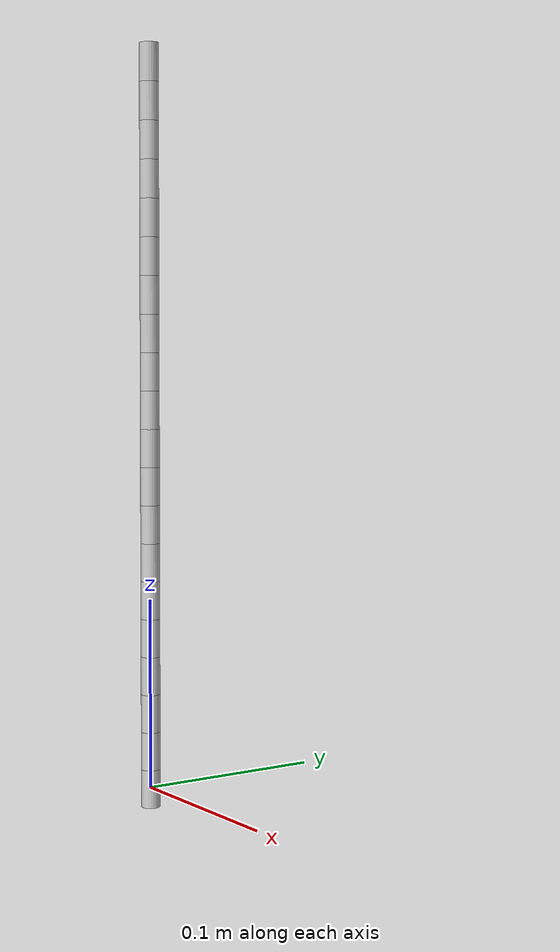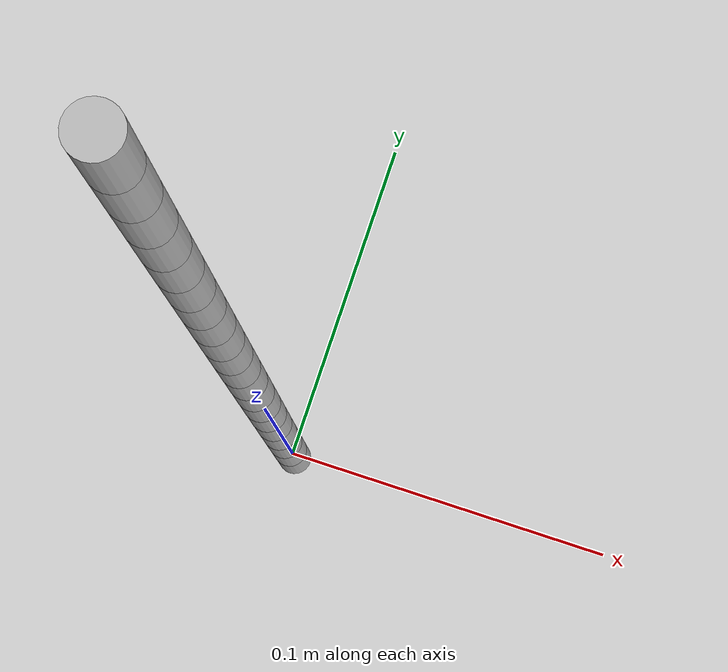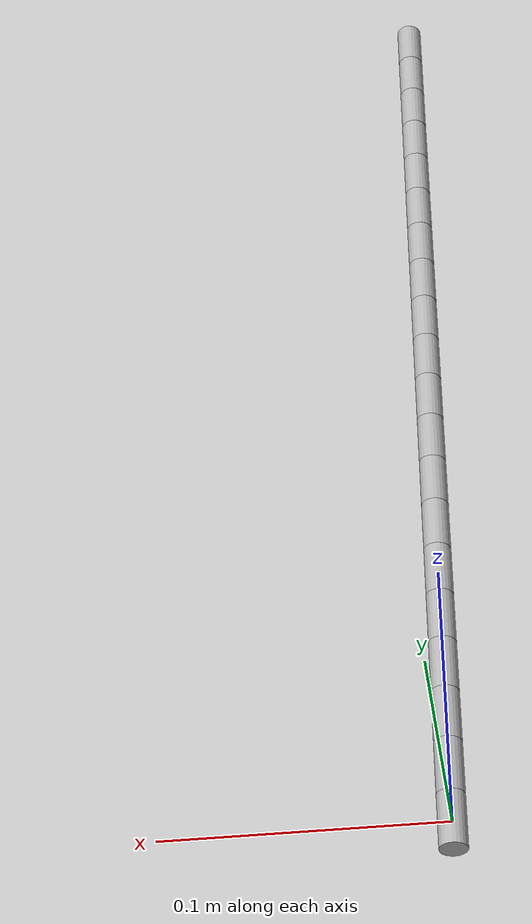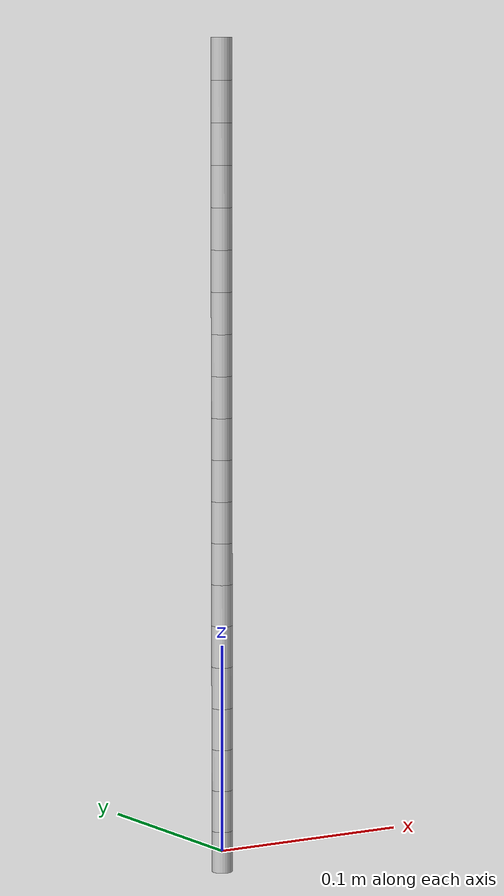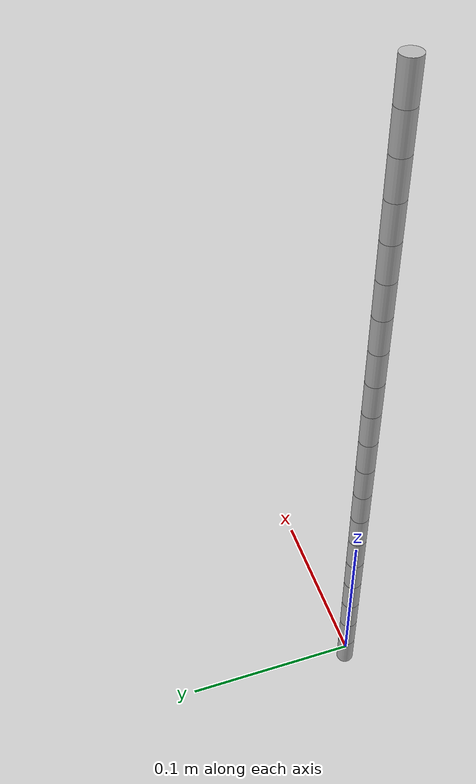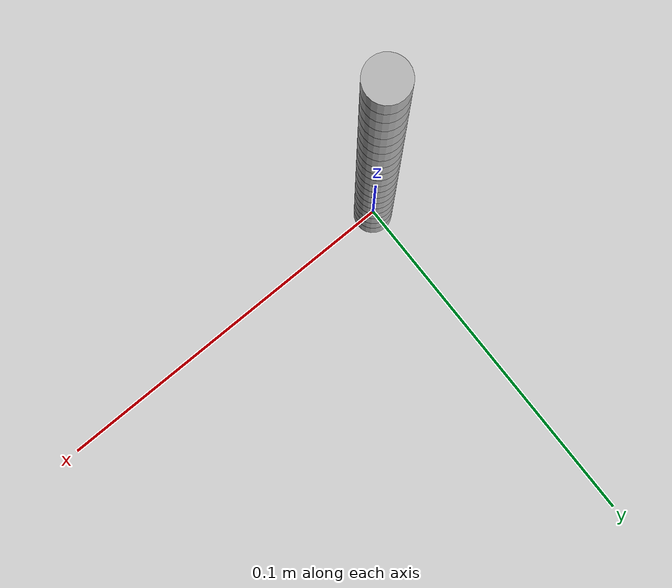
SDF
<?xml version="1.0" ?>
<sdf version='1.7'>
  <model name='tether'>
    <static>false</static>
    <link name='linking_1'>
      <inertial>
        <pose>0 0 0 0 -0 0</pose>
        <mass>0.001</mass>
        <inertia>
          <ixx>1.97917e-07</ixx>
          <ixy>0</ixy>
          <ixz>0</ixz>
          <iyy>1.97917e-07</iyy>
          <iyz>0</iyz>
          <izz>6.25e-08</izz>
        </inertia>
      </inertial>
      <collision name='linking_1_collision'>
        <pose>0 0 0 0 -0 0</pose>
        <geometry>
          <cylinder>
            <length>0.02</length>
            <radius>0.005</radius>
          </cylinder>
        </geometry>
      </collision>
      <visual name='linking_1_visual'>
        <pose>0 0 0 0 -0 0</pose>
        <geometry>
          <cylinder>
            <length>0.02</length>
            <radius>0.005</radius>
          </cylinder>
        </geometry>
      </visual>
    </link>
    <joint name='joint_tether_2' type='revolute'>
      <pose relative_to='linking_1'>0 0 0.01 0 -0 0</pose>
      <parent>linking_1</parent>
      <child>linking_2</child>
      <axis>
        <xyz>1 1 0</xyz>
        <limit>
          <lower>-2.200000</lower>
          <upper>2.200000</upper>
        </limit>
        <dynamics>
          <damping>1.000000</damping>
          <friction>0.000000</friction>
        </dynamics>
      </axis>
    </joint>
    <link name='linking_2'>
      <pose relative_to='joint_tether_2'>0 0 0.01 0 -0 0</pose>
      <inertial>
        <pose>0 0 0 0 -0 0</pose>
        <mass>0.001</mass>
        <inertia>
          <ixx>1.97917e-07</ixx>
          <ixy>0</ixy>
          <ixz>0</ixz>
          <iyy>1.97917e-07</iyy>
          <iyz>0</iyz>
          <izz>6.25e-08</izz>
        </inertia>
      </inertial>
      <collision name='linking_2_collision'>
        <pose>0 0 0 0 -0 0</pose>
        <geometry>
          <cylinder>
            <length>0.02</length>
            <radius>0.005</radius>
          </cylinder>
        </geometry>
      </collision>
      <visual name='linking_2_visual'>
        <pose>0 0 0 0 -0 0</pose>
        <geometry>
          <cylinder>
            <length>0.02</length>
            <radius>0.005</radius>
          </cylinder>
        </geometry>
      </visual>
    </link>
    <joint name='joint_tether_3' type='revolute'>
      <pose relative_to='linking_2'>0 0 0.01 0 -0 0</pose>
      <parent>linking_2</parent>
      <child>linking_3</child>
      <axis>
        <xyz>1 1 0</xyz>
        <limit>
          <lower>-2.200000</lower>
          <upper>2.200000</upper>
        </limit>
        <dynamics>
          <damping>1.000000</damping>
          <friction>0.000000</friction>
        </dynamics>
      </axis>
    </joint>
    <link name='linking_3'>
      <pose relative_to='joint_tether_3'>0 0 0.01 0 -0 0</pose>
      <inertial>
        <pose>0 0 0 0 -0 0</pose>
        <mass>0.001</mass>
        <inertia>
          <ixx>1.97917e-07</ixx>
          <ixy>0</ixy>
          <ixz>0</ixz>
          <iyy>1.97917e-07</iyy>
          <iyz>0</iyz>
          <izz>6.25e-08</izz>
        </inertia>
      </inertial>
      <collision name='linking_3_collision'>
        <pose>0 0 0 0 -0 0</pose>
        <geometry>
          <cylinder>
            <length>0.02</length>
            <radius>0.005</radius>
          </cylinder>
        </geometry>
      </collision>
      <visual name='linking_3_visual'>
        <pose>0 0 0 0 -0 0</pose>
        <geometry>
          <cylinder>
            <length>0.02</length>
            <radius>0.005</radius>
          </cylinder>
        </geometry>
      </visual>
    </link>
    <joint name='joint_tether_4' type='revolute'>
      <pose relative_to='linking_3'>0 0 0.01 0 -0 0</pose>
      <parent>linking_3</parent>
      <child>linking_4</child>
      <axis>
        <xyz>1 1 0</xyz>
        <limit>
          <lower>-2.200000</lower>
          <upper>2.200000</upper>
        </limit>
        <dynamics>
          <damping>1.000000</damping>
          <friction>0.000000</friction>
        </dynamics>
      </axis>
    </joint>
    <link name='linking_4'>
      <pose relative_to='joint_tether_4'>0 0 0.01 0 -0 0</pose>
      <inertial>
        <pose>0 0 0 0 -0 0</pose>
        <mass>0.001</mass>
        <inertia>
          <ixx>1.97917e-07</ixx>
          <ixy>0</ixy>
          <ixz>0</ixz>
          <iyy>1.97917e-07</iyy>
          <iyz>0</iyz>
          <izz>6.25e-08</izz>
        </inertia>
      </inertial>
      <collision name='linking_4_collision'>
        <pose>0 0 0 0 -0 0</pose>
        <geometry>
          <cylinder>
            <length>0.02</length>
            <radius>0.005</radius>
          </cylinder>
        </geometry>
      </collision>
      <visual name='linking_4_visual'>
        <pose>0 0 0 0 -0 0</pose>
        <geometry>
          <cylinder>
            <length>0.02</length>
            <radius>0.005</radius>
          </cylinder>
        </geometry>
      </visual>
    </link>
    <joint name='joint_tether_5' type='revolute'>
      <pose relative_to='linking_4'>0 0 0.01 0 -0 0</pose>
      <parent>linking_4</parent>
      <child>linking_5</child>
      <axis>
        <xyz>1 1 0</xyz>
        <limit>
          <lower>-2.200000</lower>
          <upper>2.200000</upper>
        </limit>
        <dynamics>
          <damping>1.000000</damping>
          <friction>0.000000</friction>
        </dynamics>
      </axis>
    </joint>
    <link name='linking_5'>
      <pose relative_to='joint_tether_5'>0 0 0.01 0 -0 0</pose>
      <inertial>
        <pose>0 0 0 0 -0 0</pose>
        <mass>0.001</mass>
        <inertia>
          <ixx>1.97917e-07</ixx>
          <ixy>0</ixy>
          <ixz>0</ixz>
          <iyy>1.97917e-07</iyy>
          <iyz>0</iyz>
          <izz>6.25e-08</izz>
        </inertia>
      </inertial>
      <collision name='linking_5_collision'>
        <pose>0 0 0 0 -0 0</pose>
        <geometry>
          <cylinder>
            <length>0.02</length>
            <radius>0.005</radius>
          </cylinder>
        </geometry>
      </collision>
      <visual name='linking_5_visual'>
        <pose>0 0 0 0 -0 0</pose>
        <geometry>
          <cylinder>
            <length>0.02</length>
            <radius>0.005</radius>
          </cylinder>
        </geometry>
      </visual>
    </link>
    <joint name='joint_tether_6' type='revolute'>
      <pose relative_to='linking_5'>0 0 0.01 0 -0 0</pose>
      <parent>linking_5</parent>
      <child>linking_6</child>
      <axis>
        <xyz>1 1 0</xyz>
        <limit>
          <lower>-2.200000</lower>
          <upper>2.200000</upper>
        </limit>
        <dynamics>
          <damping>1.000000</damping>
          <friction>0.000000</friction>
        </dynamics>
      </axis>
    </joint>
    <link name='linking_6'>
      <pose relative_to='joint_tether_6'>0 0 0.01 0 -0 0</pose>
      <inertial>
        <pose>0 0 0 0 -0 0</pose>
        <mass>0.001</mass>
        <inertia>
          <ixx>1.97917e-07</ixx>
          <ixy>0</ixy>
          <ixz>0</ixz>
          <iyy>1.97917e-07</iyy>
          <iyz>0</iyz>
          <izz>6.25e-08</izz>
        </inertia>
      </inertial>
      <collision name='linking_6_collision'>
        <pose>0 0 0 0 -0 0</pose>
        <geometry>
          <cylinder>
            <length>0.02</length>
            <radius>0.005</radius>
          </cylinder>
        </geometry>
      </collision>
      <visual name='linking_6_visual'>
        <pose>0 0 0 0 -0 0</pose>
        <geometry>
          <cylinder>
            <length>0.02</length>
            <radius>0.005</radius>
          </cylinder>
        </geometry>
      </visual>
    </link>
    <joint name='joint_tether_7' type='revolute'>
      <pose relative_to='linking_6'>0 0 0.01 0 -0 0</pose>
      <parent>linking_6</parent>
      <child>linking_7</child>
      <axis>
        <xyz>1 1 0</xyz>
        <limit>
          <lower>-2.200000</lower>
          <upper>2.200000</upper>
        </limit>
        <dynamics>
          <damping>1.000000</damping>
          <friction>0.000000</friction>
        </dynamics>
      </axis>
    </joint>
    <link name='linking_7'>
      <pose relative_to='joint_tether_7'>0 0 0.01 0 -0 0</pose>
      <inertial>
        <pose>0 0 0 0 -0 0</pose>
        <mass>0.001</mass>
        <inertia>
          <ixx>1.97917e-07</ixx>
          <ixy>0</ixy>
          <ixz>0</ixz>
          <iyy>1.97917e-07</iyy>
          <iyz>0</iyz>
          <izz>6.25e-08</izz>
        </inertia>
      </inertial>
      <collision name='linking_7_collision'>
        <pose>0 0 0 0 -0 0</pose>
        <geometry>
          <cylinder>
            <length>0.02</length>
            <radius>0.005</radius>
          </cylinder>
        </geometry>
      </collision>
      <visual name='linking_7_visual'>
        <pose>0 0 0 0 -0 0</pose>
        <geometry>
          <cylinder>
            <length>0.02</length>
            <radius>0.005</radius>
          </cylinder>
        </geometry>
      </visual>
    </link>
    <joint name='joint_tether_8' type='revolute'>
      <pose relative_to='linking_7'>0 0 0.01 0 -0 0</pose>
      <parent>linking_7</parent>
      <child>linking_8</child>
      <axis>
        <xyz>1 1 0</xyz>
        <limit>
          <lower>-2.200000</lower>
          <upper>2.200000</upper>
        </limit>
        <dynamics>
          <damping>1.000000</damping>
          <friction>0.000000</friction>
        </dynamics>
      </axis>
    </joint>
    <link name='linking_8'>
      <pose relative_to='joint_tether_8'>0 0 0.01 0 -0 0</pose>
      <inertial>
        <pose>0 0 0 0 -0 0</pose>
        <mass>0.001</mass>
        <inertia>
          <ixx>1.97917e-07</ixx>
          <ixy>0</ixy>
          <ixz>0</ixz>
          <iyy>1.97917e-07</iyy>
          <iyz>0</iyz>
          <izz>6.25e-08</izz>
        </inertia>
      </inertial>
      <collision name='linking_8_collision'>
        <pose>0 0 0 0 -0 0</pose>
        <geometry>
          <cylinder>
            <length>0.02</length>
            <radius>0.005</radius>
          </cylinder>
        </geometry>
      </collision>
      <visual name='linking_8_visual'>
        <pose>0 0 0 0 -0 0</pose>
        <geometry>
          <cylinder>
            <length>0.02</length>
            <radius>0.005</radius>
          </cylinder>
        </geometry>
      </visual>
    </link>
    <joint name='joint_tether_9' type='revolute'>
      <pose relative_to='linking_8'>0 0 0.01 0 -0 0</pose>
      <parent>linking_8</parent>
      <child>linking_9</child>
      <axis>
        <xyz>1 1 0</xyz>
        <limit>
          <lower>-2.200000</lower>
          <upper>2.200000</upper>
        </limit>
        <dynamics>
          <damping>1.000000</damping>
          <friction>0.000000</friction>
        </dynamics>
      </axis>
    </joint>
    <link name='linking_9'>
      <pose relative_to='joint_tether_9'>0 0 0.01 0 -0 0</pose>
      <inertial>
        <pose>0 0 0 0 -0 0</pose>
        <mass>0.001</mass>
        <inertia>
          <ixx>1.97917e-07</ixx>
          <ixy>0</ixy>
          <ixz>0</ixz>
          <iyy>1.97917e-07</iyy>
          <iyz>0</iyz>
          <izz>6.25e-08</izz>
        </inertia>
      </inertial>
      <collision name='linking_9_collision'>
        <pose>0 0 0 0 -0 0</pose>
        <geometry>
          <cylinder>
            <length>0.02</length>
            <radius>0.005</radius>
          </cylinder>
        </geometry>
      </collision>
      <visual name='linking_9_visual'>
        <pose>0 0 0 0 -0 0</pose>
        <geometry>
          <cylinder>
            <length>0.02</length>
            <radius>0.005</radius>
          </cylinder>
        </geometry>
      </visual>
    </link>
    <joint name='joint_tether_10' type='revolute'>
      <pose relative_to='linking_9'>0 0 0.01 0 -0 0</pose>
      <parent>linking_9</parent>
      <child>linking_10</child>
      <axis>
        <xyz>1 1 0</xyz>
        <limit>
          <lower>-2.200000</lower>
          <upper>2.200000</upper>
        </limit>
        <dynamics>
          <damping>1.000000</damping>
          <friction>0.000000</friction>
        </dynamics>
      </axis>
    </joint>
    <link name='linking_10'>
      <pose relative_to='joint_tether_10'>0 0 0.01 0 -0 0</pose>
      <inertial>
        <pose>0 0 0 0 -0 0</pose>
        <mass>0.001</mass>
        <inertia>
          <ixx>1.97917e-07</ixx>
          <ixy>0</ixy>
          <ixz>0</ixz>
          <iyy>1.97917e-07</iyy>
          <iyz>0</iyz>
          <izz>6.25e-08</izz>
        </inertia>
      </inertial>
      <collision name='linking_10_collision'>
        <pose>0 0 0 0 -0 0</pose>
        <geometry>
          <cylinder>
            <length>0.02</length>
            <radius>0.005</radius>
          </cylinder>
        </geometry>
      </collision>
      <visual name='linking_10_visual'>
        <pose>0 0 0 0 -0 0</pose>
        <geometry>
          <cylinder>
            <length>0.02</length>
            <radius>0.005</radius>
          </cylinder>
        </geometry>
      </visual>
    </link>
    <joint name='joint_tether_11' type='revolute'>
      <pose relative_to='linking_10'>0 0 0.01 0 -0 0</pose>
      <parent>linking_10</parent>
      <child>linking_11</child>
      <axis>
        <xyz>1 1 0</xyz>
        <limit>
          <lower>-2.200000</lower>
          <upper>2.200000</upper>
        </limit>
        <dynamics>
          <damping>1.000000</damping>
          <friction>0.000000</friction>
        </dynamics>
      </axis>
    </joint>
    <link name='linking_11'>
      <pose relative_to='joint_tether_11'>0 0 0.01 0 -0 0</pose>
      <inertial>
        <pose>0 0 0 0 -0 0</pose>
        <mass>0.001</mass>
        <inertia>
          <ixx>1.97917e-07</ixx>
          <ixy>0</ixy>
          <ixz>0</ixz>
          <iyy>1.97917e-07</iyy>
          <iyz>0</iyz>
          <izz>6.25e-08</izz>
        </inertia>
      </inertial>
      <collision name='linking_11_collision'>
        <pose>0 0 0 0 -0 0</pose>
        <geometry>
          <cylinder>
            <length>0.02</length>
            <radius>0.005</radius>
          </cylinder>
        </geometry>
      </collision>
      <visual name='linking_11_visual'>
        <pose>0 0 0 0 -0 0</pose>
        <geometry>
          <cylinder>
            <length>0.02</length>
            <radius>0.005</radius>
          </cylinder>
        </geometry>
      </visual>
    </link>
    <joint name='joint_tether_12' type='revolute'>
      <pose relative_to='linking_11'>0 0 0.01 0 -0 0</pose>
      <parent>linking_11</parent>
      <child>linking_12</child>
      <axis>
        <xyz>1 1 0</xyz>
        <limit>
          <lower>-2.200000</lower>
          <upper>2.200000</upper>
        </limit>
        <dynamics>
          <damping>1.000000</damping>
          <friction>0.000000</friction>
        </dynamics>
      </axis>
    </joint>
    <link name='linking_12'>
      <pose relative_to='joint_tether_12'>0 0 0.01 0 -0 0</pose>
      <inertial>
        <pose>0 0 0 0 -0 0</pose>
        <mass>0.001</mass>
        <inertia>
          <ixx>1.97917e-07</ixx>
          <ixy>0</ixy>
          <ixz>0</ixz>
          <iyy>1.97917e-07</iyy>
          <iyz>0</iyz>
          <izz>6.25e-08</izz>
        </inertia>
      </inertial>
      <collision name='linking_12_collision'>
        <pose>0 0 0 0 -0 0</pose>
        <geometry>
          <cylinder>
            <length>0.02</length>
            <radius>0.005</radius>
          </cylinder>
        </geometry>
      </collision>
      <visual name='linking_12_visual'>
        <pose>0 0 0 0 -0 0</pose>
        <geometry>
          <cylinder>
            <length>0.02</length>
            <radius>0.005</radius>
          </cylinder>
        </geometry>
      </visual>
    </link>
    <joint name='joint_tether_13' type='revolute'>
      <pose relative_to='linking_12'>0 0 0.01 0 -0 0</pose>
      <parent>linking_12</parent>
      <child>linking_13</child>
      <axis>
        <xyz>1 1 0</xyz>
        <limit>
          <lower>-2.200000</lower>
          <upper>2.200000</upper>
        </limit>
        <dynamics>
          <damping>1.000000</damping>
          <friction>0.000000</friction>
        </dynamics>
      </axis>
    </joint>
    <link name='linking_13'>
      <pose relative_to='joint_tether_13'>0 0 0.01 0 -0 0</pose>
      <inertial>
        <pose>0 0 0 0 -0 0</pose>
        <mass>0.001</mass>
        <inertia>
          <ixx>1.97917e-07</ixx>
          <ixy>0</ixy>
          <ixz>0</ixz>
          <iyy>1.97917e-07</iyy>
          <iyz>0</iyz>
          <izz>6.25e-08</izz>
        </inertia>
      </inertial>
      <collision name='linking_13_collision'>
        <pose>0 0 0 0 -0 0</pose>
        <geometry>
          <cylinder>
            <length>0.02</length>
            <radius>0.005</radius>
          </cylinder>
        </geometry>
      </collision>
      <visual name='linking_13_visual'>
        <pose>0 0 0 0 -0 0</pose>
        <geometry>
          <cylinder>
            <length>0.02</length>
            <radius>0.005</radius>
          </cylinder>
        </geometry>
      </visual>
    </link>
    <joint name='joint_tether_14' type='revolute'>
      <pose relative_to='linking_13'>0 0 0.01 0 -0 0</pose>
      <parent>linking_13</parent>
      <child>linking_14</child>
      <axis>
        <xyz>1 1 0</xyz>
        <limit>
          <lower>-2.200000</lower>
          <upper>2.200000</upper>
        </limit>
        <dynamics>
          <damping>1.000000</damping>
          <friction>0.000000</friction>
        </dynamics>
      </axis>
    </joint>
    <link name='linking_14'>
      <pose relative_to='joint_tether_14'>0 0 0.01 0 -0 0</pose>
      <inertial>
        <pose>0 0 0 0 -0 0</pose>
        <mass>0.001</mass>
        <inertia>
          <ixx>1.97917e-07</ixx>
          <ixy>0</ixy>
          <ixz>0</ixz>
          <iyy>1.97917e-07</iyy>
          <iyz>0</iyz>
          <izz>6.25e-08</izz>
        </inertia>
      </inertial>
      <collision name='linking_14_collision'>
        <pose>0 0 0 0 -0 0</pose>
        <geometry>
          <cylinder>
            <length>0.02</length>
            <radius>0.005</radius>
          </cylinder>
        </geometry>
      </collision>
      <visual name='linking_14_visual'>
        <pose>0 0 0 0 -0 0</pose>
        <geometry>
          <cylinder>
            <length>0.02</length>
            <radius>0.005</radius>
          </cylinder>
        </geometry>
      </visual>
    </link>
    <joint name='joint_tether_15' type='revolute'>
      <pose relative_to='linking_14'>0 0 0.01 0 -0 0</pose>
      <parent>linking_14</parent>
      <child>linking_15</child>
      <axis>
        <xyz>1 1 0</xyz>
        <limit>
          <lower>-2.200000</lower>
          <upper>2.200000</upper>
        </limit>
        <dynamics>
          <damping>1.000000</damping>
          <friction>0.000000</friction>
        </dynamics>
      </axis>
    </joint>
    <link name='linking_15'>
      <pose relative_to='joint_tether_15'>0 0 0.01 0 -0 0</pose>
      <inertial>
        <pose>0 0 0 0 -0 0</pose>
        <mass>0.001</mass>
        <inertia>
          <ixx>1.97917e-07</ixx>
          <ixy>0</ixy>
          <ixz>0</ixz>
          <iyy>1.97917e-07</iyy>
          <iyz>0</iyz>
          <izz>6.25e-08</izz>
        </inertia>
      </inertial>
      <collision name='linking_15_collision'>
        <pose>0 0 0 0 -0 0</pose>
        <geometry>
          <cylinder>
            <length>0.02</length>
            <radius>0.005</radius>
          </cylinder>
        </geometry>
      </collision>
      <visual name='linking_15_visual'>
        <pose>0 0 0 0 -0 0</pose>
        <geometry>
          <cylinder>
            <length>0.02</length>
            <radius>0.005</radius>
          </cylinder>
        </geometry>
      </visual>
    </link>
    <joint name='joint_tether_16' type='revolute'>
      <pose relative_to='linking_15'>0 0 0.01 0 -0 0</pose>
      <parent>linking_15</parent>
      <child>linking_16</child>
      <axis>
        <xyz>1 1 0</xyz>
        <limit>
          <lower>-2.200000</lower>
          <upper>2.200000</upper>
        </limit>
        <dynamics>
          <damping>1.000000</damping>
          <friction>0.000000</friction>
        </dynamics>
      </axis>
    </joint>
    <link name='linking_16'>
      <pose relative_to='joint_tether_16'>0 0 0.01 0 -0 0</pose>
      <inertial>
        <pose>0 0 0 0 -0 0</pose>
        <mass>0.001</mass>
        <inertia>
          <ixx>1.97917e-07</ixx>
          <ixy>0</ixy>
          <ixz>0</ixz>
          <iyy>1.97917e-07</iyy>
          <iyz>0</iyz>
          <izz>6.25e-08</izz>
        </inertia>
      </inertial>
      <collision name='linking_16_collision'>
        <pose>0 0 0 0 -0 0</pose>
        <geometry>
          <cylinder>
            <length>0.02</length>
            <radius>0.005</radius>
          </cylinder>
        </geometry>
      </collision>
      <visual name='linking_16_visual'>
        <pose>0 0 0 0 -0 0</pose>
        <geometry>
          <cylinder>
            <length>0.02</length>
            <radius>0.005</radius>
          </cylinder>
        </geometry>
      </visual>
    </link>
    <joint name='joint_tether_17' type='revolute'>
      <pose relative_to='linking_16'>0 0 0.01 0 -0 0</pose>
      <parent>linking_16</parent>
      <child>linking_17</child>
      <axis>
        <xyz>1 1 0</xyz>
        <limit>
          <lower>-2.200000</lower>
          <upper>2.200000</upper>
        </limit>
        <dynamics>
          <damping>1.000000</damping>
          <friction>0.000000</friction>
        </dynamics>
      </axis>
    </joint>
    <link name='linking_17'>
      <pose relative_to='joint_tether_17'>0 0 0.01 0 -0 0</pose>
      <inertial>
        <pose>0 0 0 0 -0 0</pose>
        <mass>0.001</mass>
        <inertia>
          <ixx>1.97917e-07</ixx>
          <ixy>0</ixy>
          <ixz>0</ixz>
          <iyy>1.97917e-07</iyy>
          <iyz>0</iyz>
          <izz>6.25e-08</izz>
        </inertia>
      </inertial>
      <collision name='linking_17_collision'>
        <pose>0 0 0 0 -0 0</pose>
        <geometry>
          <cylinder>
            <length>0.02</length>
            <radius>0.005</radius>
          </cylinder>
        </geometry>
      </collision>
      <visual name='linking_17_visual'>
        <pose>0 0 0 0 -0 0</pose>
        <geometry>
          <cylinder>
            <length>0.02</length>
            <radius>0.005</radius>
          </cylinder>
        </geometry>
      </visual>
    </link>
    <joint name='joint_tether_18' type='revolute'>
      <pose relative_to='linking_17'>0 0 0.01 0 -0 0</pose>
      <parent>linking_17</parent>
      <child>linking_18</child>
      <axis>
        <xyz>1 1 0</xyz>
        <limit>
          <lower>-2.200000</lower>
          <upper>2.200000</upper>
        </limit>
        <dynamics>
          <damping>1.000000</damping>
          <friction>0.000000</friction>
        </dynamics>
      </axis>
    </joint>
    <link name='linking_18'>
      <pose relative_to='joint_tether_18'>0 0 0.01 0 -0 0</pose>
      <inertial>
        <pose>0 0 0 0 -0 0</pose>
        <mass>0.001</mass>
        <inertia>
          <ixx>1.97917e-07</ixx>
          <ixy>0</ixy>
          <ixz>0</ixz>
          <iyy>1.97917e-07</iyy>
          <iyz>0</iyz>
          <izz>6.25e-08</izz>
        </inertia>
      </inertial>
      <collision name='linking_18_collision'>
        <pose>0 0 0 0 -0 0</pose>
        <geometry>
          <cylinder>
            <length>0.02</length>
            <radius>0.005</radius>
          </cylinder>
        </geometry>
      </collision>
      <visual name='linking_18_visual'>
        <pose>0 0 0 0 -0 0</pose>
        <geometry>
          <cylinder>
            <length>0.02</length>
            <radius>0.005</radius>
          </cylinder>
        </geometry>
      </visual>
    </link>
    <joint name='joint_tether_19' type='revolute'>
      <pose relative_to='linking_18'>0 0 0.01 0 -0 0</pose>
      <parent>linking_18</parent>
      <child>linking_19</child>
      <axis>
        <xyz>1 1 0</xyz>
        <limit>
          <lower>-2.200000</lower>
          <upper>2.200000</upper>
        </limit>
        <dynamics>
          <damping>1.000000</damping>
          <friction>0.000000</friction>
        </dynamics>
      </axis>
    </joint>
    <link name='linking_19'>
      <pose relative_to='joint_tether_19'>0 0 0.01 0 -0 0</pose>
      <inertial>
        <pose>0 0 0 0 -0 0</pose>
        <mass>0.001</mass>
        <inertia>
          <ixx>1.97917e-07</ixx>
          <ixy>0</ixy>
          <ixz>0</ixz>
          <iyy>1.97917e-07</iyy>
          <iyz>0</iyz>
          <izz>6.25e-08</izz>
        </inertia>
      </inertial>
      <collision name='linking_19_collision'>
        <pose>0 0 0 0 -0 0</pose>
        <geometry>
          <cylinder>
            <length>0.02</length>
            <radius>0.005</radius>
          </cylinder>
        </geometry>
      </collision>
      <visual name='linking_19_visual'>
        <pose>0 0 0 0 -0 0</pose>
        <geometry>
          <cylinder>
            <length>0.02</length>
            <radius>0.005</radius>
          </cylinder>
        </geometry>
      </visual>
    </link>
    <joint name='joint_tether_20' type='revolute'>
      <pose relative_to='linking_19'>0 0 0.01 0 -0 0</pose>
      <parent>linking_19</parent>
      <child>linking_20</child>
      <axis>
        <xyz>1 1 0</xyz>
        <limit>
          <lower>-2.200000</lower>
          <upper>2.200000</upper>
        </limit>
        <dynamics>
          <damping>1.000000</damping>
          <friction>0.000000</friction>
        </dynamics>
      </axis>
    </joint>
    <link name='linking_20'>
      <pose relative_to='joint_tether_20'>0 0 0.01 0 -0 0</pose>
      <inertial>
        <pose>0 0 0 0 -0 0</pose>
        <mass>0.001</mass>
        <inertia>
          <ixx>1.97917e-07</ixx>
          <ixy>0</ixy>
          <ixz>0</ixz>
          <iyy>1.97917e-07</iyy>
          <iyz>0</iyz>
          <izz>6.25e-08</izz>
        </inertia>
      </inertial>
      <collision name='linking_20_collision'>
        <pose>0 0 0 0 -0 0</pose>
        <geometry>
          <cylinder>
            <length>0.02</length>
            <radius>0.005</radius>
          </cylinder>
        </geometry>
      </collision>
      <visual name='linking_20_visual'>
        <pose>0 0 0 0 -0 0</pose>
        <geometry>
          <cylinder>
            <length>0.02</length>
            <radius>0.005</radius>
          </cylinder>
        </geometry>
      </visual>
    </link>
    <static>0</static>
    <plugin name='gazebo_ros_modelate_tether' filename='libgazebo_ros_modelate_tether.so'>
      <namespace>marsupial_tether</namespace>
      <numLinkTether>20</numLinkTether>
      <nameLinkFrame>tether::linking</nameLinkFrame>
      <initLengthTether>0.5</initLengthTether>
    </plugin>
  </model>
</sdf>
